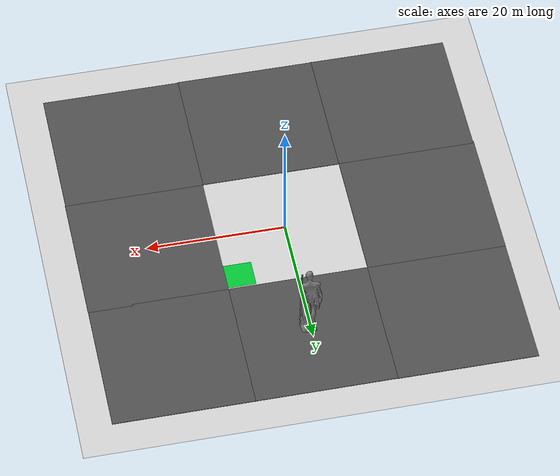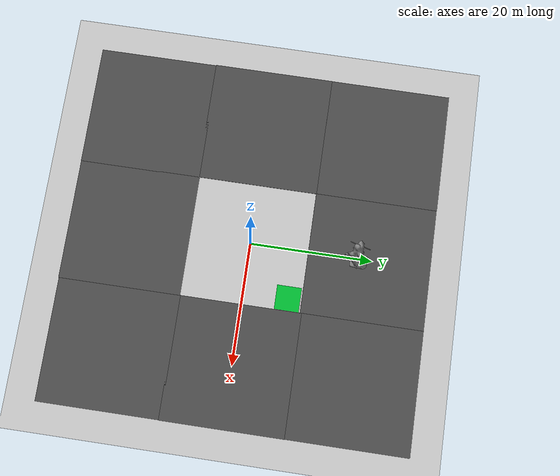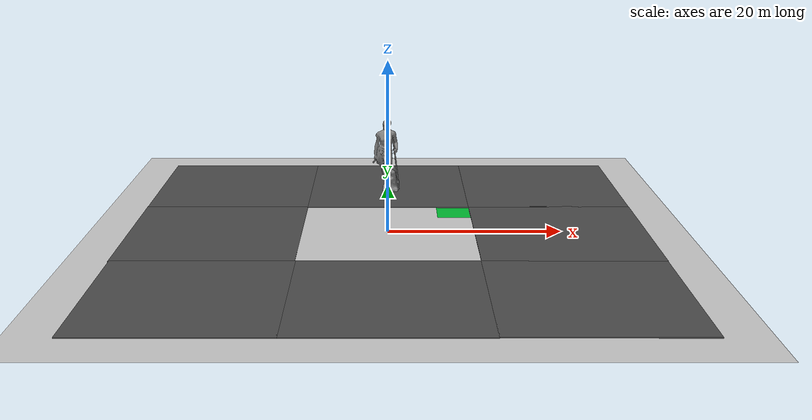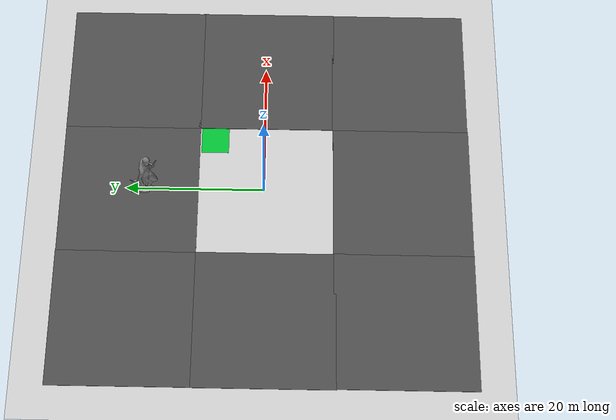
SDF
<sdf version="1.7">
 <world name="default">
  <light name="sun" type="directional">
   <pose>0 0 10 0 -0 0</pose>
   <diffuse>0.8 0.8 0.8 1</diffuse>
   <specular>0.2 0.2 0.2 1</specular>
   <attenuation>
    <range>1000</range>
    <constant>0.9</constant>
    <linear>0.01</linear>
    <quadratic>0.001</quadratic>
   </attenuation>
   <direction>-0.5 0.1 -0.9</direction>
   <spot><inner_angle>0</inner_angle><outer_angle>0</outer_angle><falloff>0</falloff></spot>
  </light>
  <model name="ground_plane">
   <static>1</static>
   <link name="link">
    <collision name="collision">
     <geometry><plane><normal>0 0 1</normal><size>100 100</size></plane></geometry>
     <surface><friction><ode><mu>100</mu><mu2>50</mu2></ode></friction></surface>
    </collision>
    <visual name="visual">
     <cast_shadows>0</cast_shadows>
     <geometry><plane><normal>0 0 1</normal><size>100 100</size></plane></geometry>
     <material>
      <script><uri>file://media/materials/scripts/gazebo.material</uri><name>Gazebo/Grey</name></script>
     </material>
    </visual>
   </link>
  </model>
  <gravity>0 0 -9.8</gravity>
  <magnetic_field>6e-06 2.3e-05 -4.2e-05</magnetic_field>
  <atmosphere type="adiabatic"/>
  <physics type="ode">
   <max_step_size>0.001</max_step_size>
   <real_time_factor>1</real_time_factor>
   <real_time_update_rate>1000</real_time_update_rate>
  </physics>
  <scene><ambient>0.4 0.4 0.4 1</ambient><background>0.7 0.7 0.7 1</background><shadows>1</shadows></scene>
  <audio><device>default</device></audio>
  <spherical_coordinates>
   <surface_model>EARTH_WGS84</surface_model>
   <latitude_deg>0</latitude_deg>
   <longitude_deg>0</longitude_deg>
   <elevation>0</elevation>
   <heading_deg>0</heading_deg>
  </spherical_coordinates>
  <model name="rectangular_marking">
   <pose>0 -0.190159 -0.048306 0 -0 0</pose>
   <static>1</static>
   <link name="rectangle">
    <visual name="rectangle_visual">
     <geometry><box><size>4 4 0.005</size></box></geometry>
     <material><ambient>0 0.75 0.2 1</ambient><diffuse>0 0.75 0.2 1</diffuse></material>
     <pose>8 7.5 0.05 0 -0 0</pose>
    </visual>
   </link>
  </model>
  <model name="amazone">
   <static>1</static>
   <link name="amazone_link">
    <visual name="amazone_visual">
     <geometry>
      <mesh><uri>model://amazone/meshes/amazone.dae</uri><scale>0.005 0.005 0.005</scale></mesh>
     </geometry>
     <material>
      <ambient>0.5 0.5 0.5 1</ambient>
      <diffuse>0.5 0.5 0.5 1</diffuse>
      <specular>0.1 0.1 0.1 1</specular>
     </material>
    </visual>
    <collision name="amazone_collision"><geometry><box><size>5 5 0.5</size></box></geometry></collision>
    <inertial>
     <mass>100</mass>
     <inertia><ixx>0</ixx><ixy>0</ixy><ixz>0</ixz><iyy>0</iyy><iyz>0</iyz><izz>0</izz></inertia>
    </inertial>
   </link>
   <pose>-0.074707 17.1955 4.71874 0 -0 0</pose>
  </model>
  <model name="asphalt_plane_clone">
   <static>1</static>
   <link name="link">
    <collision name="collision"><geometry><box><size>20 20 0.1</size></box></geometry></collision>
    <visual name="visual">
     <cast_shadows>0</cast_shadows>
     <geometry><box><size>20 20 0.1</size></box></geometry>
     <material>
      <script>
       <uri>model://asphalt_plane/materials/scripts</uri>
       <uri>model://asphalt_plane/materials/textures</uri>
       <name>vrc/asphalt</name>
      </script>
     </material>
    </visual>
   </link>
   <pose>20.0306 -0.186304 0 0 -0 0</pose>
  </model>
  <model name="asphalt_plane_clone_0">
   <static>1</static>
   <link name="link">
    <collision name="collision"><geometry><box><size>20 20 0.1</size></box></geometry></collision>
    <visual name="visual">
     <cast_shadows>0</cast_shadows>
     <geometry><box><size>20 20 0.1</size></box></geometry>
     <material>
      <script>
       <uri>model://asphalt_plane/materials/scripts</uri>
       <uri>model://asphalt_plane/materials/textures</uri>
       <name>vrc/asphalt</name>
      </script>
     </material>
    </visual>
   </link>
   <pose>-19.9551 -0.382286 0 0 -0 0</pose>
  </model>
  <model name="asphalt_plane_clone_1">
   <static>1</static>
   <link name="link">
    <collision name="collision"><geometry><box><size>20 20 0.1</size></box></geometry></collision>
    <visual name="visual">
     <cast_shadows>0</cast_shadows>
     <geometry><box><size>20 20 0.1</size></box></geometry>
     <material>
      <script>
       <uri>model://asphalt_plane/materials/scripts</uri>
       <uri>model://asphalt_plane/materials/textures</uri>
       <name>vrc/asphalt</name>
      </script>
     </material>
    </visual>
   </link>
   <pose>0.055857 -20.0337 0 0 -0 0</pose>
  </model>
  <model name="asphalt_plane_clone_2">
   <static>1</static>
   <link name="link">
    <collision name="collision"><geometry><box><size>20 20 0.1</size></box></geometry></collision>
    <visual name="visual">
     <cast_shadows>0</cast_shadows>
     <geometry><box><size>20 20 0.1</size></box></geometry>
     <material>
      <script>
       <uri>model://asphalt_plane/materials/scripts</uri>
       <uri>model://asphalt_plane/materials/textures</uri>
       <name>vrc/asphalt</name>
      </script>
     </material>
    </visual>
   </link>
   <pose>19.9845 -19.9482 0 0 -0 0</pose>
  </model>
  <model name="asphalt_plane_clone_3">
   <static>1</static>
   <link name="link">
    <collision name="collision"><geometry><box><size>20 20 0.1</size></box></geometry></collision>
    <visual name="visual">
     <cast_shadows>0</cast_shadows>
     <geometry><box><size>20 20 0.1</size></box></geometry>
     <material>
      <script>
       <uri>model://asphalt_plane/materials/scripts</uri>
       <uri>model://asphalt_plane/materials/textures</uri>
       <name>vrc/asphalt</name>
      </script>
     </material>
    </visual>
   </link>
   <pose>-19.8579 -20.0659 0 0 -0 0</pose>
  </model>
  <model name="asphalt_plane_clone_4">
   <static>1</static>
   <link name="link">
    <collision name="collision"><geometry><box><size>20 20 0.1</size></box></geometry></collision>
    <visual name="visual">
     <cast_shadows>0</cast_shadows>
     <geometry><box><size>20 20 0.1</size></box></geometry>
     <material>
      <script>
       <uri>model://asphalt_plane/materials/scripts</uri>
       <uri>model://asphalt_plane/materials/textures</uri>
       <name>vrc/asphalt</name>
      </script>
     </material>
    </visual>
   </link>
   <pose>20.0055 19.5465 0 0 -0 0</pose>
  </model>
  <model name="asphalt_plane_clone_5">
   <static>1</static>
   <link name="link">
    <collision name="collision"><geometry><box><size>20 20 0.1</size></box></geometry></collision>
    <visual name="visual">
     <cast_shadows>0</cast_shadows>
     <geometry><box><size>20 20 0.1</size></box></geometry>
     <material>
      <script>
       <uri>model://asphalt_plane/materials/scripts</uri>
       <uri>model://asphalt_plane/materials/textures</uri>
       <name>vrc/asphalt</name>
      </script>
     </material>
    </visual>
   </link>
   <pose>0.006811 19.5389 0 0 -0 0</pose>
  </model>
  <model name="asphalt_plane_clone_0_clone">
   <static>1</static>
   <link name="link">
    <collision name="collision"><geometry><box><size>20 20 0.1</size></box></geometry></collision>
    <visual name="visual">
     <cast_shadows>0</cast_shadows>
     <geometry><box><size>20 20 0.1</size></box></geometry>
     <material>
      <script>
       <uri>model://asphalt_plane/materials/scripts</uri>
       <uri>model://asphalt_plane/materials/textures</uri>
       <name>vrc/asphalt</name>
      </script>
     </material>
    </visual>
   </link>
   <pose>-19.9329 19.5826 0 0 -0 0</pose>
  </model>
 </world>
</sdf>
